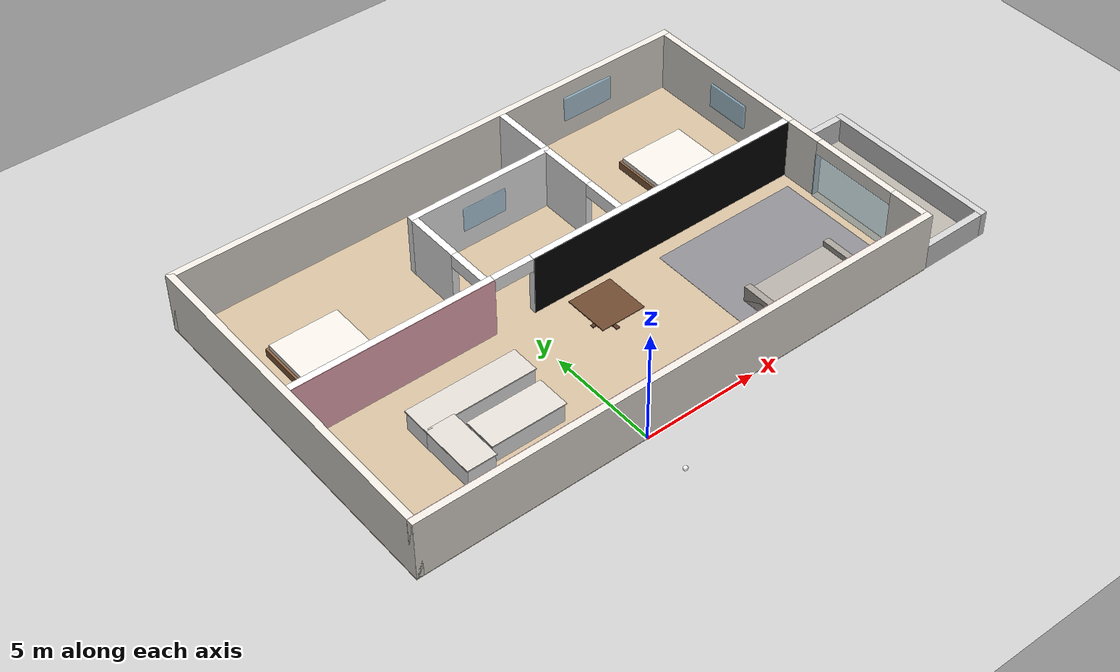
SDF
<sdf version="1.10">
 <world name="default">
  <plugin name="gz::sim::systems::Physics" filename="gz-sim-physics-system"/>
  <plugin name="gz::sim::systems::UserCommands" filename="gz-sim-user-commands-system"/>
  <plugin name="gz::sim::systems::SceneBroadcaster" filename="gz-sim-scene-broadcaster-system"/>
  <gravity>0 0 -9.8000000000000007</gravity>
  <magnetic_field>5.5644999999999998e-06 2.2875799999999999e-05 -4.2388400000000002e-05</magnetic_field>
  <atmosphere type="adiabatic"/>
  <physics type="ode">
   <max_step_size>0.001</max_step_size>
   <real_time_factor>1</real_time_factor>
   <real_time_update_rate>1000</real_time_update_rate>
  </physics>
  <scene>
   <ambient>0.400000006 0.400000006 0.400000006 1</ambient>
   <background>0.699999988 0.699999988 0.699999988 1</background>
   <shadows>true</shadows>
  </scene>
  <include><uri>models://building</uri><name>building</name><pose>-10 0 0 0 0 0</pose></include>
  <include>
   <uri>models://kitchen_island</uri>
   <name>kitchen_island</name>
   <pose>-3.3215820789337158 3.2000000476837158 0 0 0 0</pose>
  </include>
  <include>
   <uri>models://kitchen_counter</uri>
   <name>kitchen_counter</name>
   <pose>-6.2968692779541016 4.50 0 0 0 0</pose>
  </include>
  <include>
   <uri>models://dining_table</uri>
   <name>dining_table</name>
   <pose>2.7478134632110596 5.5999999046325684 0 0 0 0</pose>
  </include>
  <include>
   <uri>models://couch</uri>
   <name>couch</name>
   <pose>9.603668212890625 2.2000000476837158 0 0 0 0</pose>
  </include>
  <include>
   <uri>models://bed</uri>
   <name>bed_1</name>
   <pose>10.3892173767089844 10.0746002197265625 0 0 0 0</pose>
  </include>
  <include><uri>models://bed</uri><name>bed_2</name><pose>-6.5447897911071778 10 0 0 0 0</pose></include>
  <model name="ground_plane">
   <static>true</static>
   <link name="link">
    <collision name="collision">
     <geometry><plane><normal>0 0 1</normal><size>100 100</size></plane></geometry>
     <surface>
      <contact><collide_bitmask>65535</collide_bitmask></contact>
      <friction><ode><mu>100</mu><mu2>50</mu2></ode></friction>
     </surface>
    </collision>
    <visual name="visual">
     <cast_shadows>false</cast_shadows>
     <geometry><plane><normal>0 0 1</normal><size>100 100</size></plane></geometry>
     <material>
      <script><uri>file://media/materials/scripts/gazebo.material</uri><name>Gazebo/Grey</name></script>
     </material>
    </visual>
    <inertial>
     <mass>1</mass>
     <inertia><ixx>1</ixx><ixy>0</ixy><ixz>0</ixz><iyy>1</iyy><iyz>0</iyz><izz>1</izz></inertia>
    </inertial>
   </link>
  </model>
  <model name="my_ball">
   <static>false</static>
   <pose>0 -2 0.15 0 0 0</pose>
   <link name="link">
    <collision name="collision"><geometry><sphere><radius>0.1</radius></sphere></geometry></collision>
    <visual name="visual">
     <geometry><sphere><radius>0.1</radius></sphere></geometry>
     <material>
      <ambient>1 1 1 1</ambient>
      <diffuse>1 1 1 1</diffuse>
      <specular>1 1 1 1</specular>
      <emissive>1 1 1 1</emissive>
     </material>
    </visual>
   </link>
  </model>
  <light name="sun" type="directional">
   <pose>0 0 10 0 0 0</pose>
   <intensity>1</intensity>
   <direction>-0.5 0.10000000000000001 -0.90000000000000002</direction>
   <diffuse>0.800000012 0.800000012 0.800000012 1</diffuse>
   <specular>0.200000003 0.200000003 0.200000003 1</specular>
   <attenuation>
    <range>1000</range>
    <linear>0.01</linear>
    <constant>0.90000000000000002</constant>
    <quadratic>0.001</quadratic>
   </attenuation>
   <spot><inner_angle>0</inner_angle><outer_angle>0</outer_angle><falloff>0</falloff></spot>
  </light>
 </world>
</sdf>

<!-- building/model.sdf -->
<sdf version="1.7">
  <model name="building">
    <static>true</static>

    <!-- ─────────────────────────────────────────
         FLOOR SLABS  (top face z=0)
         ───────────────────────────────────────── -->
    <link name="floor_main">
      <pose>12.00 7.69 -0.025 0 0 0</pose>
      <collision name="collision">
        <geometry><box><size>24.00 15.38 0.05</size></box></geometry>
      </collision>
      <visual name="visual">
        <geometry><box><size>24.00 15.38 0.05</size></box></geometry>
        <material>
          <ambient>0.82 0.74 0.62 1</ambient>
          <diffuse>0.82 0.74 0.62 1</diffuse>
          <specular>0.04 0.04 0.04 1</specular>
        </material>
      </visual>
    </link>

    <link name="floor_balcony">
      <pose>25.47 4.01 -0.025 0 0 0</pose>
      <collision name="collision">
        <geometry><box><size>2.94 7.42 0.05</size></box></geometry>
      </collision>
      <visual name="visual">
        <geometry><box><size>2.94 7.42 0.05</size></box></geometry>
        <material>
          <ambient>0.72 0.70 0.66 1</ambient>
          <diffuse>0.72 0.70 0.66 1</diffuse>
          <specular>0.04 0.04 0.04 1</specular>
        </material>
      </visual>
    </link>

    <!-- ─────────────────────────────────────────
         EXTERIOR WALLS  (warm off-white)
         ───────────────────────────────────────── -->
    <link name="wall_south">
      <pose>12.00 0.15 1.35 0 0 0</pose>
      <collision name="collision">
        <geometry><box><size>24.00 0.30 2.70</size></box></geometry>
      </collision>
      <visual name="visual">
        <geometry><box><size>24.00 0.30 2.70</size></box></geometry>
        <material>
          <ambient>0.93 0.91 0.88 1</ambient>
          <diffuse>0.93 0.91 0.88 1</diffuse>
          <specular>0.05 0.05 0.05 1</specular>
        </material>
      </visual>
    </link>

    <link name="wall_north">
      <pose>12.00 15.23 1.35 0 0 0</pose>
      <collision name="collision">
        <geometry><box><size>24.00 0.30 2.70</size></box></geometry>
      </collision>
      <visual name="visual">
        <geometry><box><size>24.00 0.30 2.70</size></box></geometry>
        <material>
          <ambient>0.93 0.91 0.88 1</ambient>
          <diffuse>0.93 0.91 0.88 1</diffuse>
          <specular>0.05 0.05 0.05 1</specular>
        </material>
      </visual>
    </link>

    <link name="wall_west">
      <pose>0.15 7.69 1.35 0 0 0</pose>
      <collision name="collision">
        <geometry><box><size>0.30 15.38 2.70</size></box></geometry>
      </collision>
      <visual name="visual">
        <geometry><box><size>0.30 15.38 2.70</size></box></geometry>
        <material>
          <ambient>0.93 0.91 0.88 1</ambient>
          <diffuse>0.93 0.91 0.88 1</diffuse>
          <specular>0.05 0.05 0.05 1</specular>
        </material>
      </visual>
    </link>

    <!-- East wall — bedroom side only (y=7.86..15.08).
         South side replaced by sliding-door flanks. -->
    <link name="wall_east_bedroom">
      <pose>23.85 11.32 1.35 0 0 0</pose>
      <collision name="collision">
        <geometry><box><size>0.30 7.52 2.70</size></box></geometry>
      </collision>
      <visual name="visual">
        <geometry><box><size>0.30 7.52 2.70</size></box></geometry>
        <material>
          <ambient>0.93 0.91 0.88 1</ambient>
          <diffuse>0.93 0.91 0.88 1</diffuse>
          <specular>0.05 0.05 0.05 1</specular>
        </material>
      </visual>
    </link>

    <!-- ─────────────────────────────────────────
         SLIDING DOOR — living room ↔ balcony
         Door opening: y=1.93..5.93 (4.00 m wide)
         ───────────────────────────────────────── -->
    <link name="wall_door_flank_south">
      <!-- y=0.30..1.93, len=1.63, centre y=1.115 -->
      <pose>23.85 1.115 1.35 0 0 0</pose>
      <collision name="collision">
        <geometry><box><size>0.30 1.63 2.70</size></box></geometry>
      </collision>
      <visual name="visual">
        <geometry><box><size>0.30 1.63 2.70</size></box></geometry>
        <material>
          <ambient>0.93 0.91 0.88 1</ambient>
          <diffuse>0.93 0.91 0.88 1</diffuse>
          <specular>0.05 0.05 0.05 1</specular>
        </material>
      </visual>
    </link>

    <link name="wall_door_flank_north">
      <!-- y=5.93..7.56, len=1.63, centre y=6.745 -->
      <pose>23.85 6.745 1.35 0 0 0</pose>
      <collision name="collision">
        <geometry><box><size>0.30 1.63 2.70</size></box></geometry>
      </collision>
      <visual name="visual">
        <geometry><box><size>0.30 1.63 2.70</size></box></geometry>
        <material>
          <ambient>0.93 0.91 0.88 1</ambient>
          <diffuse>0.93 0.91 0.88 1</diffuse>
          <specular>0.05 0.05 0.05 1</specular>
        </material>
      </visual>
    </link>

    <link name="wall_door_transom">
      <!-- z=2.10..2.70, centre z=2.40 -->
      <pose>23.85 3.93 2.40 0 0 0</pose>
      <collision name="collision">
        <geometry><box><size>0.30 4.00 0.60</size></box></geometry>
      </collision>
      <visual name="visual">
        <geometry><box><size>0.30 4.00 0.60</size></box></geometry>
        <material>
          <ambient>0.93 0.91 0.88 1</ambient>
          <diffuse>0.93 0.91 0.88 1</diffuse>
          <specular>0.05 0.05 0.05 1</specular>
        </material>
      </visual>
    </link>

    <link name="door_balcony_glass">
      <pose>23.68 3.93 1.05 0 0 0</pose>
      <visual name="visual">
        <geometry><box><size>0.04 4.00 2.10</size></box></geometry>
        <material>
          <ambient>0.55 0.80 0.95 1</ambient>
          <diffuse>0.60 0.85 1.00 1</diffuse>
          <specular>0.90 0.95 1.00 1</specular>
        </material>
        <transparency>0.55</transparency>
      </visual>
    </link>

    <!-- ─────────────────────────────────────────
         BALCONY RAILINGS
         ───────────────────────────────────────── -->
    <link name="wall_balcony_south">
      <pose>25.47 0.15 0.55 0 0 0</pose>
      <collision name="collision">
        <geometry><box><size>2.94 0.30 1.10</size></box></geometry>
      </collision>
      <visual name="visual">
        <geometry><box><size>2.94 0.30 1.10</size></box></geometry>
        <material>
          <ambient>0.82 0.82 0.82 1</ambient>
          <diffuse>0.82 0.82 0.82 1</diffuse>
          <specular>0.20 0.20 0.20 1</specular>
        </material>
      </visual>
    </link>

    <link name="wall_balcony_east">
      <pose>27.09 4.01 0.55 0 0 0</pose>
      <collision name="collision">
        <geometry><box><size>0.30 8.02 1.10</size></box></geometry>
      </collision>
      <visual name="visual">
        <geometry><box><size>0.30 8.02 1.10</size></box></geometry>
        <material>
          <ambient>0.82 0.82 0.82 1</ambient>
          <diffuse>0.82 0.82 0.82 1</diffuse>
          <specular>0.20 0.20 0.20 1</specular>
        </material>
      </visual>
    </link>

    <link name="wall_balcony_north">
      <pose>25.47 7.87 0.55 0 0 0</pose>
      <collision name="collision">
        <geometry><box><size>2.94 0.30 1.10</size></box></geometry>
      </collision>
      <visual name="visual">
        <geometry><box><size>2.94 0.30 1.10</size></box></geometry>
        <material>
          <ambient>0.82 0.82 0.82 1</ambient>
          <diffuse>0.82 0.82 0.82 1</diffuse>
          <specular>0.20 0.20 0.20 1</specular>
        </material>
      </visual>
    </link>

    <!-- West segment: x=0.30..9.10, len=8.80, centre x=4.70 -->
    <link name="wall_mid_west">
      <pose>4.70 7.71 1.35 0 0 0</pose>
      <collision name="collision">
        <geometry><box><size>8.80 0.30 2.70</size></box></geometry>
      </collision>
      <visual name="visual">
        <geometry><box><size>8.80 0.30 2.70</size></box></geometry>
        <material>
          <ambient>0.98 0.98 0.98 1</ambient>
          <diffuse>0.98 0.98 0.98 1</diffuse>
          <specular>0.06 0.06 0.06 1</specular>
        </material>
      </visual>
    </link>

    <!-- East segment: x=10.90..23.70, len=12.80, centre x=17.30 -->
    <link name="wall_mid_east">
      <pose>17.30 7.71 1.35 0 0 0</pose>
      <collision name="collision">
        <geometry><box><size>12.80 0.30 2.70</size></box></geometry>
      </collision>
      <visual name="visual">
        <geometry><box><size>12.80 0.30 2.70</size></box></geometry>
        <material>
          <ambient>0.98 0.98 0.98 1</ambient>
          <diffuse>0.98 0.98 0.98 1</diffuse>
          <specular>0.06 0.06 0.06 1</specular>
        </material>
      </visual>
    </link>

    <!-- White accent — kitchen/living interior face of wall_south -->
    <link name="wall_south_north_face">
      <pose>12.00 0.31 1.35 0 0 0</pose>
      <visual name="visual">
        <geometry><box><size>24.00 0.02 2.70</size></box></geometry>
        <material>
          <ambient>0.98 0.71 0.76 1</ambient>
          <diffuse>0.98 0.71 0.76 1</diffuse>
          <specular>0.05 0.05 0.05 1</specular>
        </material>
      </visual>
    </link>

    <!-- White accent — kitchen face of wall_mid_west (south side) -->
    <link name="wall_mid_west_south_face">
      <pose>4.70 7.55 1.35 0 0 0</pose>
      <visual name="visual">
        <geometry><box><size>8.80 0.02 2.70</size></box></geometry>
        <material>
          <ambient>0.98 0.71 0.76 1</ambient>
          <diffuse>0.98 0.71 0.76 1</diffuse>
          <specular>0.05 0.05 0.05 1</specular>
        </material>
      </visual>
    </link>

    <!-- Black accent — living-room face of wall_mid_east -->
    <link name="wall_mid_east_south_face">
      <pose>17.30 7.55 1.35 0 0 0</pose>
      <visual name="visual">
        <geometry><box><size>12.80 0.02 2.70</size></box></geometry>
        <material>
          <ambient>0.02 0.02 0.02 1</ambient>
          <diffuse>0.02 0.02 0.02 1</diffuse>
          <specular>0.05 0.05 0.05 1</specular>
        </material>
      </visual>
    </link>

    <!-- Transom above mid-wall door -->
    <link name="wall_mid_door_transom">
      <pose>10.00 7.71 2.40 0 0 0</pose>
      <collision name="collision">
        <geometry><box><size>1.80 0.30 0.60</size></box></geometry>
      </collision>
      <visual name="visual">
        <geometry><box><size>1.80 0.30 0.60</size></box></geometry>
        <material>
          <ambient>0.98 0.98 0.98 1</ambient>
          <diffuse>0.98 0.98 0.98 1</diffuse>
          <specular>0.06 0.06 0.06 1</specular>
        </material>
      </visual>
    </link>

    <!-- Upper segment: y=9.66..12.12, len=2.46, centre y=10.89 -->
    <link name="wall_bed2_west_upper">
      <pose>8.83 10.89 1.35 0 0 0</pose>
      <collision name="collision">
        <geometry><box><size>0.30 2.46 2.70</size></box></geometry>
      </collision>
      <visual name="visual">
        <geometry><box><size>0.30 2.46 2.70</size></box></geometry>
        <material>
          <ambient>0.98 0.98 0.98 1</ambient>
          <diffuse>0.98 0.98 0.98 1</diffuse>
          <specular>0.06 0.06 0.06 1</specular>
        </material>
      </visual>
    </link>

    <!-- Transom above bedroom-2 door: y=7.86..9.66, z=2.10..2.70 -->
    <link name="wall_bed2_door_transom">
      <pose>8.83 8.76 2.40 0 0 0</pose>
      <collision name="collision">
        <geometry><box><size>0.30 1.80 0.60</size></box></geometry>
      </collision>
      <visual name="visual">
        <geometry><box><size>0.30 1.80 0.60</size></box></geometry>
        <material>
          <ambient>0.98 0.98 0.98 1</ambient>
          <diffuse>0.98 0.98 0.98 1</diffuse>
          <specular>0.06 0.06 0.06 1</specular>
        </material>
      </visual>
    </link>

    <!-- Bedroom-2 north wall: closes room at y=12.12
         x=8.98..15.08, len=6.10, centre x=12.03       -->
    <link name="wall_bed2_north">
      <pose>12.03 12.27 1.35 0 0 0</pose>
      <collision name="collision">
        <geometry><box><size>6.70 0.30 2.70</size></box></geometry>
      </collision>
      <visual name="visual">
        <geometry><box><size>6.70 0.30 2.70</size></box></geometry>
        <material>
          <ambient>0.98 0.98 0.98 1</ambient>
          <diffuse>0.98 0.98 0.98 1</diffuse>
          <specular>0.06 0.06 0.06 1</specular>
        </material>
      </visual>
    </link>

    <!-- Upper segment: y=9.66..15.08, len=5.42, centre y=12.37 -->
    <link name="wall_bed1_west_upper">
      <pose>15.23 12.37 1.35 0 0 0</pose>
      <collision name="collision">
        <geometry><box><size>0.30 5.42 2.70</size></box></geometry>
      </collision>
      <visual name="visual">
        <geometry><box><size>0.30 5.42 2.70</size></box></geometry>
        <material>
          <ambient>0.98 0.98 0.98 1</ambient>
          <diffuse>0.98 0.98 0.98 1</diffuse>
          <specular>0.06 0.06 0.06 1</specular>
        </material>
      </visual>
    </link>

    <!-- Transom above bedroom-1 door -->
    <link name="wall_bed1_door_transom">
      <pose>15.23 8.76 2.40 0 0 0</pose>
      <collision name="collision">
        <geometry><box><size>0.30 1.80 0.60</size></box></geometry>
      </collision>
      <visual name="visual">
        <geometry><box><size>0.30 1.80 0.60</size></box></geometry>
        <material>
          <ambient>0.98 0.98 0.98 1</ambient>
          <diffuse>0.98 0.98 0.98 1</diffuse>
          <specular>0.06 0.06 0.06 1</specular>
        </material>
      </visual>
    </link>

    <!-- Bedroom 1 north window -->
    <link name="window_bed1_north">
      <pose>19.54 15.04 1.45 0 0 0</pose>
      <visual name="visual">
        <geometry><box><size>2.40 0.12 1.10</size></box></geometry>
        <material>
          <ambient>0.55 0.80 0.95 1</ambient>
          <diffuse>0.60 0.85 1.00 1</diffuse>
          <specular>0.90 0.95 1.00 1</specular>
        </material>
        <transparency>0.50</transparency>
      </visual>
    </link>

    <!-- Bedroom 1 east window -->
    <link name="window_bed1_east">
      <pose>23.66 11.00 1.45 0 0 0</pose>
      <visual name="visual">
        <geometry><box><size>0.12 2.00 1.10</size></box></geometry>
        <material>
          <ambient>0.55 0.80 0.95 1</ambient>
          <diffuse>0.60 0.85 1.00 1</diffuse>
          <specular>0.90 0.95 1.00 1</specular>
        </material>
        <transparency>0.50</transparency>
      </visual>
    </link>

    <!-- Bedroom 2 north window -->
    <link name="window_bed2_north">
      <pose>12.03 12.14 1.45 0 0 0</pose>
      <visual name="visual">
        <geometry><box><size>2.00 0.12 1.10</size></box></geometry>
        <material>
          <ambient>0.55 0.80 0.95 1</ambient>
          <diffuse>0.60 0.85 1.00 1</diffuse>
          <specular>0.90 0.95 1.00 1</specular>
        </material>
        <transparency>0.50</transparency>
      </visual>
    </link>

    <!-- Living / kitchen south window -->
    <link name="window_living_south">
      <pose>19.91 0.34 1.45 0 0 0</pose>
      <visual name="visual">
        <geometry><box><size>4.40 0.12 1.10</size></box></geometry>
        <material>
          <ambient>0.55 0.80 0.95 1</ambient>
          <diffuse>0.60 0.85 1.00 1</diffuse>
          <specular>0.90 0.95 1.00 1</specular>
        </material>
        <transparency>0.50</transparency>
      </visual>
    </link>

    <!-- ─────────────────────────────────────────
         CARPET — living room
         6.80 × 6.00 m, centred, 6 mm thick
         ───────────────────────────────────────── -->
    <link name="carpet_living">
      <pose>19.91 3.93 0.003 0 0 0</pose>
      <collision name="collision">
        <geometry><box><size>6.80 6.00 0.006</size></box></geometry>
      </collision>
      <visual name="visual">
        <geometry><box><size>6.80 6.00 0.006</size></box></geometry>
        <material>
          <ambient>0.52 0.52 0.54 1</ambient>
          <diffuse>0.55 0.55 0.57 1</diffuse>
          <specular>0.02 0.02 0.02 1</specular>
        </material>
      </visual>
    </link>

  </model>
</sdf>

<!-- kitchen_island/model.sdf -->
<sdf version="1.7">
  <model name="kitchen_island">
    <static>true</static>

    <!-- Cabinet body: 3.20 × 1.40 × 0.86 m -->
    <link name="cabinet">
      <pose>0 0 0.43 0 0 0</pose>
      <collision name="collision">
        <geometry><box><size>3.20 1.40 0.86</size></box></geometry>
      </collision>
      <visual name="visual">
        <geometry><box><size>3.20 1.40 0.86</size></box></geometry>
        <material>
          <ambient>0.95 0.95 0.95 1</ambient>
          <diffuse>0.95 0.95 0.95 1</diffuse>
          <specular>0.30 0.30 0.30 1</specular>
        </material>
      </visual>
    </link>

    <!-- Counter top: marble/stone look, slightly overhanging -->
    <link name="counter_top">
      <pose>0 0 0.875 0 0 0</pose>
      <collision name="collision">
        <geometry><box><size>3.30 1.50 0.05</size></box></geometry>
      </collision>
      <visual name="visual">
        <geometry><box><size>3.30 1.50 0.05</size></box></geometry>
        <material>
          <ambient>0.85 0.83 0.80 1</ambient>
          <diffuse>0.88 0.86 0.83 1</diffuse>
          <specular>0.40 0.40 0.40 1</specular>
        </material>
      </visual>
    </link>

  </model>
</sdf>

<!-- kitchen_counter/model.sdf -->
<sdf version="1.7">
  <model name="kitchen_counter">
    <static>true</static>

    <!-- Back run cabinet body -->
    <link name="cabinet_back">
      <!-- local origin at SW corner; centre offset -->
      <pose>2.40 0.60 0.44 0 0 0</pose>
      <collision name="collision">
        <geometry><box><size>4.80 1.20 0.88</size></box></geometry>
      </collision>
      <visual name="visual">
        <geometry><box><size>4.80 1.20 0.88</size></box></geometry>
        <material>
          <ambient>0.96 0.96 0.96 1</ambient>
          <diffuse>0.96 0.96 0.96 1</diffuse>
          <specular>0.25 0.25 0.25 1</specular>
        </material>
      </visual>
    </link>

    <!-- Back run counter top (stone/marble) -->
    <link name="top_back">
      <pose>2.40 0.60 0.905 0 0 0</pose>
      <collision name="collision">
        <geometry><box><size>4.88 1.28 0.05</size></box></geometry>
      </collision>
      <visual name="visual">
        <geometry><box><size>4.88 1.28 0.05</size></box></geometry>
        <material>
          <ambient>0.84 0.82 0.79 1</ambient>
          <diffuse>0.87 0.85 0.82 1</diffuse>
          <specular>0.45 0.45 0.45 1</specular>
        </material>
      </visual>
    </link>

    <!-- Sink basin (depressed, stainless look) — sits in back-run top -->
    <link name="sink_basin">
      <pose>3.60 0.56 0.895 0 0 0</pose>
      <collision name="collision">
        <geometry><box><size>1.00 0.76 0.02</size></box></geometry>
      </collision>
      <visual name="visual">
        <geometry><box><size>1.00 0.76 0.02</size></box></geometry>
        <material>
          <ambient>0.70 0.72 0.72 1</ambient>
          <diffuse>0.75 0.77 0.77 1</diffuse>
          <specular>0.80 0.80 0.80 1</specular>
        </material>
      </visual>
    </link>

    <!-- Side run cabinet body -->
    <link name="cabinet_side">
      <pose>0.60 -1.20 0.44 0 0 0</pose>
      <collision name="collision">
        <geometry><box><size>1.20 2.40 0.88</size></box></geometry>
      </collision>
      <visual name="visual">
        <geometry><box><size>1.20 2.40 0.88</size></box></geometry>
        <material>
          <ambient>0.96 0.96 0.96 1</ambient>
          <diffuse>0.96 0.96 0.96 1</diffuse>
          <specular>0.25 0.25 0.25 1</specular>
        </material>
      </visual>
    </link>

    <!-- Side run counter top -->
    <link name="top_side">
      <pose>0.60 -1.20 0.905 0 0 0</pose>
      <collision name="collision">
        <geometry><box><size>1.28 2.48 0.05</size></box></geometry>
      </collision>
      <visual name="visual">
        <geometry><box><size>1.28 2.48 0.05</size></box></geometry>
        <material>
          <ambient>0.84 0.82 0.79 1</ambient>
          <diffuse>0.87 0.85 0.82 1</diffuse>
          <specular>0.45 0.45 0.45 1</specular>
        </material>
      </visual>
    </link>

  </model>
</sdf>

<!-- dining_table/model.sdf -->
<sdf version="1.7">
  <model name="dining_table">
    <static>true</static>

    <!-- Table top: 2.0 × 2.0 × 0.04 m, surface at z=0.76 -->
    <link name="top">
      <pose>0 0 0.74 0 0 0</pose>
      <collision name="collision">
        <geometry><box><size>2.00 2.00 0.04</size></box></geometry>
      </collision>
      <visual name="visual">
        <geometry><box><size>2.00 2.00 0.04</size></box></geometry>
        <material>
          <ambient>0.42 0.28 0.18 1</ambient>
          <diffuse>0.42 0.28 0.18 1</diffuse>
          <specular>0.15 0.10 0.05 1</specular>
        </material>
      </visual>
    </link>

    <!-- Central pedestal: 0.24 × 0.24 × 0.72 m -->
    <link name="pedestal">
      <pose>0 0 0.36 0 0 0</pose>
      <collision name="collision">
        <geometry><box><size>0.24 0.24 0.72</size></box></geometry>
      </collision>
      <visual name="visual">
        <geometry><box><size>0.24 0.24 0.72</size></box></geometry>
        <material>
          <ambient>0.35 0.22 0.14 1</ambient>
          <diffuse>0.35 0.22 0.14 1</diffuse>
          <specular>0.10 0.07 0.04 1</specular>
        </material>
      </visual>
    </link>

    <!-- Base cross-feet: two thin bars at z=0.04 -->
    <link name="foot_ns">
      <pose>0 0 0.025 0 0 0</pose>
      <collision name="collision">
        <geometry><box><size>0.16 1.40 0.05</size></box></geometry>
      </collision>
      <visual name="visual">
        <geometry><box><size>0.16 1.40 0.05</size></box></geometry>
        <material>
          <ambient>0.35 0.22 0.14 1</ambient>
          <diffuse>0.35 0.22 0.14 1</diffuse>
          <specular>0.10 0.07 0.04 1</specular>
        </material>
      </visual>
    </link>

    <link name="foot_ew">
      <pose>0 0 0.025 0 0 1.5708</pose>
      <collision name="collision">
        <geometry><box><size>0.16 1.40 0.05</size></box></geometry>
      </collision>
      <visual name="visual">
        <geometry><box><size>0.16 1.40 0.05</size></box></geometry>
        <material>
          <ambient>0.35 0.22 0.14 1</ambient>
          <diffuse>0.35 0.22 0.14 1</diffuse>
          <specular>0.10 0.07 0.04 1</specular>
        </material>
      </visual>
    </link>

  </model>
</sdf>

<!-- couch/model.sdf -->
<sdf version="1.7">
  <model name="couch">
    <static>true</static>

    <!-- Seat cushion -->
    <link name="seat">
      <pose>0 0.30 0.225 0 0 0</pose>
      <collision name="collision">
        <geometry><box><size>4.40 1.20 0.45</size></box></geometry>
      </collision>
      <visual name="visual">
        <geometry><box><size>4.40 1.20 0.45</size></box></geometry>
        <material>
          <ambient>0.70 0.68 0.65 1</ambient>
          <diffuse>0.70 0.68 0.65 1</diffuse>
          <specular>0.03 0.03 0.03 1</specular>
        </material>
      </visual>
    </link>

    <!-- Backrest -->
    <link name="backrest">
      <pose>0 -0.75 0.55 0 0 0</pose>
      <collision name="collision">
        <geometry><box><size>4.40 0.30 0.65</size></box></geometry>
      </collision>
      <visual name="visual">
        <geometry><box><size>4.40 0.30 0.65</size></box></geometry>
        <material>
          <ambient>0.65 0.63 0.60 1</ambient>
          <diffuse>0.65 0.63 0.60 1</diffuse>
          <specular>0.03 0.03 0.03 1</specular>
        </material>
      </visual>
    </link>

    <!-- Left armrest -->
    <link name="armrest_left">
      <pose>-2.05 0 0.35 0 0 0</pose>
      <collision name="collision">
        <geometry><box><size>0.30 1.80 0.70</size></box></geometry>
      </collision>
      <visual name="visual">
        <geometry><box><size>0.30 1.80 0.70</size></box></geometry>
        <material>
          <ambient>0.65 0.63 0.60 1</ambient>
          <diffuse>0.65 0.63 0.60 1</diffuse>
          <specular>0.03 0.03 0.03 1</specular>
        </material>
      </visual>
    </link>

    <!-- Right armrest -->
    <link name="armrest_right">
      <pose>2.05 0 0.35 0 0 0</pose>
      <collision name="collision">
        <geometry><box><size>0.30 1.80 0.70</size></box></geometry>
      </collision>
      <visual name="visual">
        <geometry><box><size>0.30 1.80 0.70</size></box></geometry>
        <material>
          <ambient>0.65 0.63 0.60 1</ambient>
          <diffuse>0.65 0.63 0.60 1</diffuse>
          <specular>0.03 0.03 0.03 1</specular>
        </material>
      </visual>
    </link>

  </model>
</sdf>

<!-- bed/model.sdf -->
<sdf version="1.7">
  <model name="bed">
    <static>true</static>

    <link name="frame">
      <pose>0 0 0.175 0 0 0</pose>
      <collision name="collision">
        <geometry><box><size>3.20 4.00 0.35</size></box></geometry>
      </collision>
      <visual name="visual">
        <geometry><box><size>3.20 4.00 0.35</size></box></geometry>
        <material>
          <ambient>0.55 0.38 0.25 1</ambient>
          <diffuse>0.55 0.38 0.25 1</diffuse>
          <specular>0.05 0.05 0.05 1</specular>
        </material>
      </visual>
    </link>

    <link name="mattress">
      <pose>0 0 0.45 0 0 0</pose>
      <collision name="collision">
        <geometry><box><size>3.00 3.80 0.20</size></box></geometry>
      </collision>
      <visual name="visual">
        <geometry><box><size>3.00 3.80 0.20</size></box></geometry>
        <material>
          <ambient>0.95 0.93 0.90 1</ambient>
          <diffuse>0.95 0.93 0.90 1</diffuse>
          <specular>0.02 0.02 0.02 1</specular>
        </material>
      </visual>
    </link>

  </model>
</sdf>
